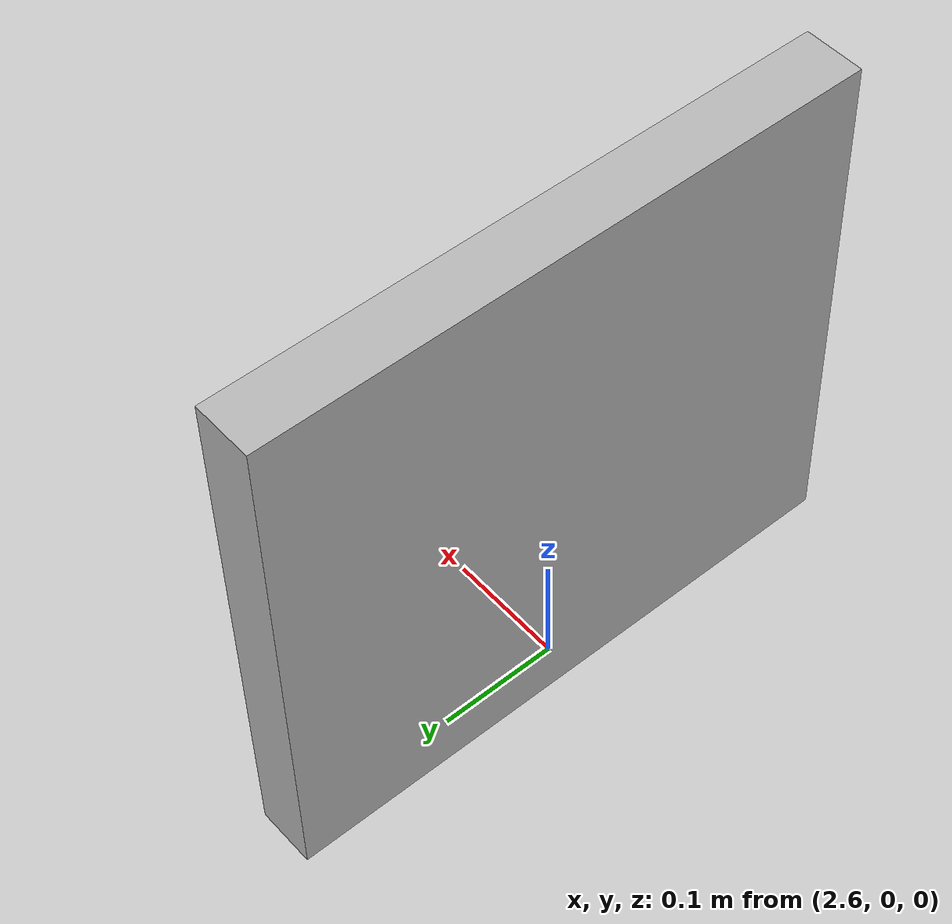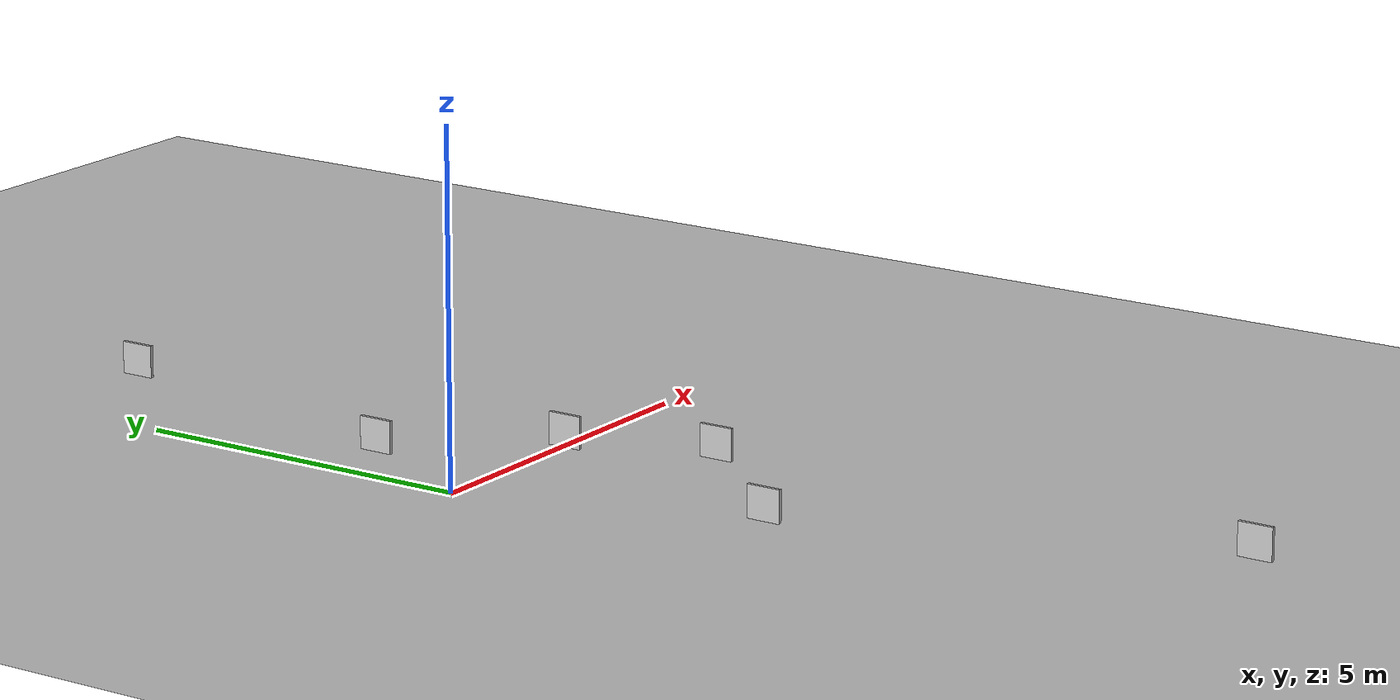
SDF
<sdf version="1.4">
  <world name="default">

    <scene>
      <ambient>0.4 0.4 0.4 1</ambient>
      <background>0.7 0.7 0.7 1</background>
      <shadows>true</shadows>
    </scene>

    <!-- A global light source -->
    <include>
      <uri>model://sun</uri>
    </include>

    <!-- A ground plane -->
    <include>
      <uri>model://ground_plane</uri>
    </include>

    <physics type="ode">
      <real_time_update_rate>1000.0</real_time_update_rate>
      <max_step_size>0.001</max_step_size>
      <real_time_factor>1</real_time_factor>
      <ode>
        <solver>
          <type>quick</type>
          <iters>150</iters>
          <precon_iters>0</precon_iters>
          <sor>1.400000</sor>
          <use_dynamic_moi_rescaling>1</use_dynamic_moi_rescaling>
        </solver>
        <constraints>
          <cfm>0.00001</cfm>
          <erp>0.2</erp>
          <contact_max_correcting_vel>2000.000000</contact_max_correcting_vel>
          <contact_surface_layer>0.01000</contact_surface_layer>
        </constraints>
      </ode>
    </physics>

    <model name="box1">
      <pose>1 2 0.2 0 0 0</pose>
      <link name="link">
        <collision name="collision">
          <geometry>
            <box>
              <size>0.05 0.5 0.1</size>
            </box>
          </geometry>
        </collision>

        <visual name="visual">
          <geometry>
            <box>
              <size>0.05 0.5 0.5</size>
            </box>
          </geometry>
        </visual>
      </link>

      <plugin name="model_push" filename="libbox_linear.so"/>
    </model>
    <model name="box2">
      <pose>1.4 -4 0.2 0 0 0</pose>
      <link name="link">
        <collision name="collision">
          <geometry>
            <box>
              <size>0.05 0.5 0.1</size>
            </box>
          </geometry>
        </collision>

        <visual name="visual">
          <geometry>
            <box>
              <size>0.05 0.5 0.5</size>
            </box>
          </geometry>
        </visual>
      </link>

      <plugin name="model_push" filename="libbox_linear.so"/>
    </model>
    <model name="box3">
      <pose>2 7 0.2 0 0 0</pose>
      <link name="link">
        <collision name="collision">
          <geometry>
            <box>
              <size>0.05 0.5 0.1</size>
            </box>
          </geometry>
        </collision>

        <visual name="visual">
          <geometry>
            <box>
              <size>0.05 0.5 0.5</size>
            </box>
          </geometry>
        </visual>
      </link>

      <plugin name="model_push" filename="libbox_linear.so"/>
    </model>
    <model name="box4">
      <pose>2.6 0 0.2 0 0 0</pose>
      <link name="link">
        <collision name="collision">
          <geometry>
            <box>
              <size>0.05 0.5 0.1</size>
            </box>
          </geometry>
        </collision>

        <visual name="visual">
          <geometry>
            <box>
              <size>0.05 0.5 0.5</size>
            </box>
          </geometry>
        </visual>
      </link>

      <plugin name="model_push" filename="libbox_linear.so"/>
    </model>
    <model name="box5">
      <pose>3.3 -2 0.2 0 0 0</pose>
      <link name="link">
        <collision name="collision">
          <geometry>
            <box>
              <size>0.05 0.5 0.1</size>
            </box>
          </geometry>
        </collision>

        <visual name="visual">
          <geometry>
            <box>
              <size>0.05 0.5 0.5</size>
            </box>
          </geometry>
        </visual>
      </link>

      <plugin name="model_push" filename="libbox_linear.so"/>
    </model>
    <model name="box6">
      <pose>3.6 -10 0.2 0 0 0</pose>
      <link name="link">
        <collision name="collision">
          <geometry>
            <box>
              <size>0.05 0.5 0.1</size>
            </box>
          </geometry>
        </collision>

        <visual name="visual">
          <geometry>
            <box>
              <size>0.05 0.5 0.5</size>
            </box>
          </geometry>
        </visual>
      </link>

      <plugin name="model_push" filename="libbox_linear.so"/>
    </model>

  </world>

</sdf>
